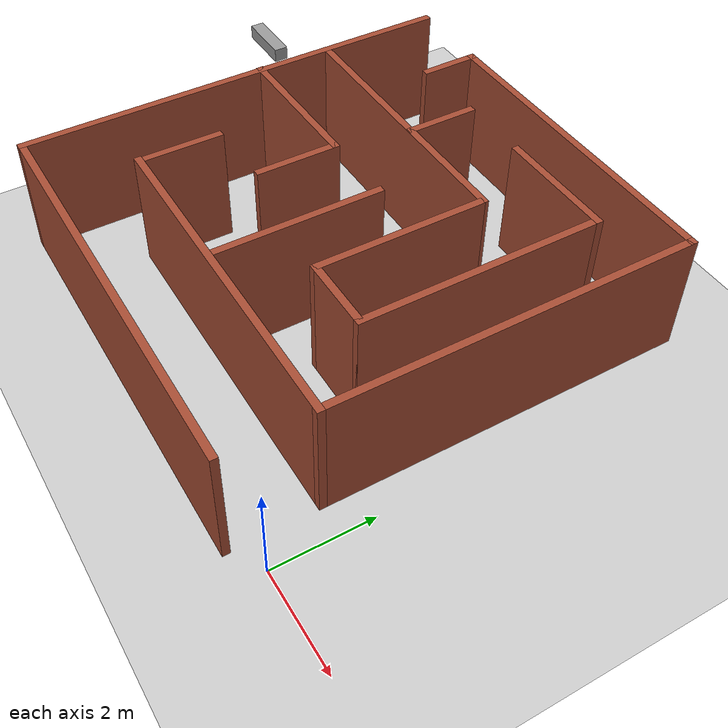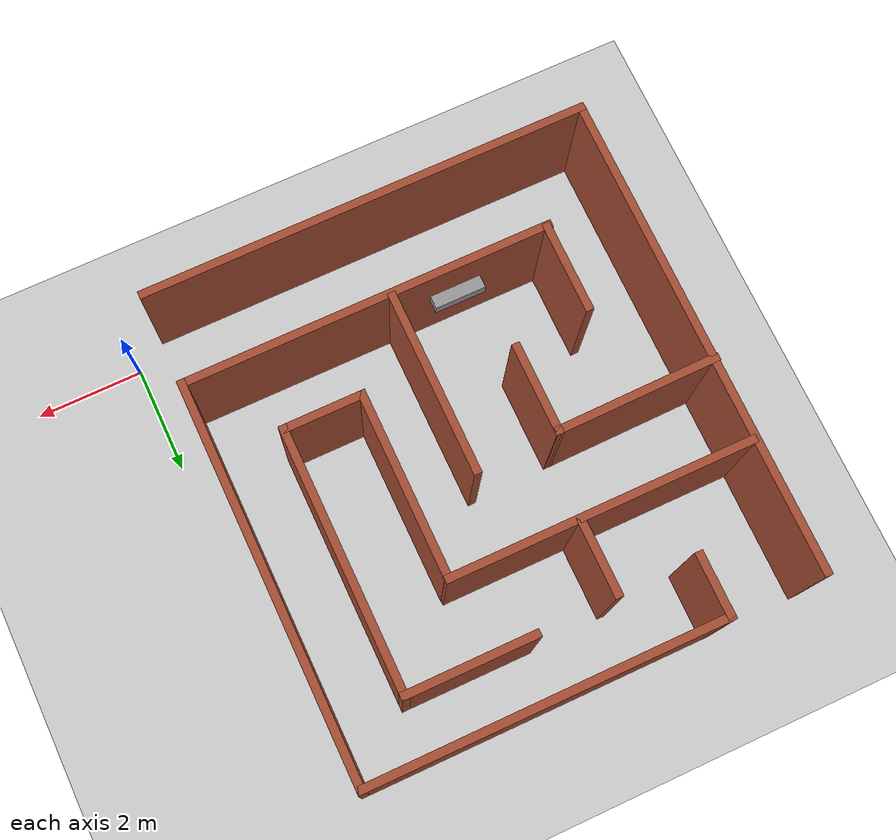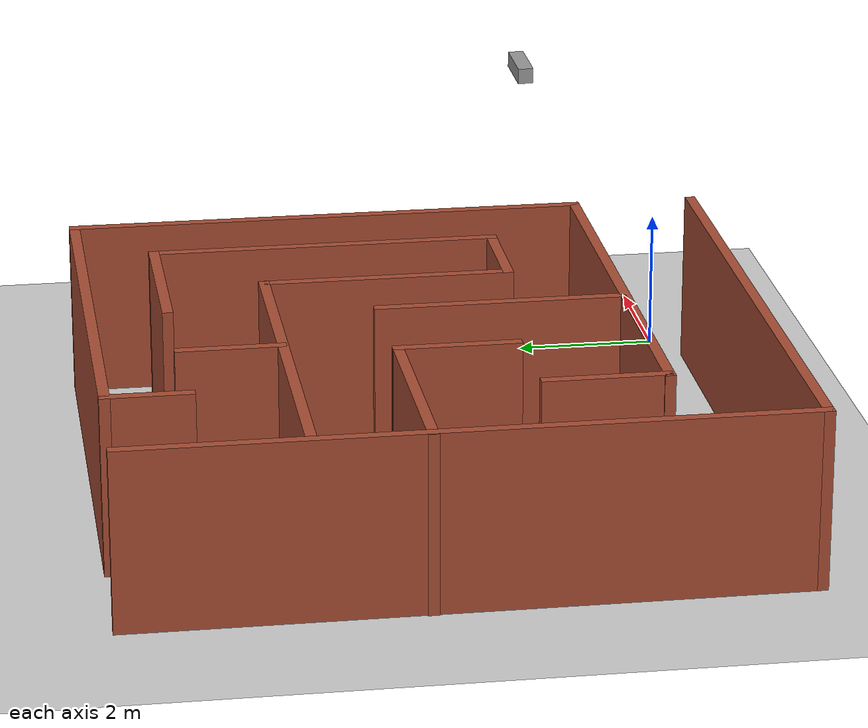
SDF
<sdf version="1.7">
 <world name="default">
  <light name="sun" type="directional">
   <pose>0 0 10 0 -0 0</pose>
   <diffuse>0.8 0.8 0.8 1</diffuse>
   <specular>0.2 0.2 0.2 1</specular>
   <attenuation>
    <range>1000</range>
    <constant>0.9</constant>
    <linear>0.01</linear>
    <quadratic>0.001</quadratic>
   </attenuation>
   <direction>-0.5 0.1 -0.9</direction>
   <spot><inner_angle>0</inner_angle><outer_angle>0</outer_angle><falloff>0</falloff></spot>
  </light>
  <model name="ground_plane">
   <static>1</static>
   <link name="link">
    <collision name="collision">
     <geometry><plane><normal>0 0 1</normal><size>100 100</size></plane></geometry>
     <surface><friction><ode><mu>100</mu><mu2>50</mu2></ode></friction></surface>
    </collision>
    <visual name="visual">
     <cast_shadows>0</cast_shadows>
     <geometry><plane><normal>0 0 1</normal><size>100 100</size></plane></geometry>
     <material>
      <script><uri>file://media/materials/scripts/gazebo.material</uri><name>Gazebo/Grey</name></script>
     </material>
    </visual>
   </link>
  </model>
  <gravity>0 0 -9.8</gravity>
  <magnetic_field>6e-06 2.3e-05 -4.2e-05</magnetic_field>
  <atmosphere type="adiabatic"/>
  <physics type="ode">
   <max_step_size>0.001</max_step_size>
   <real_time_factor>1</real_time_factor>
   <real_time_update_rate>1000</real_time_update_rate>
  </physics>
  <scene><ambient>0.4 0.4 0.4 1</ambient><background>0.7 0.7 0.7 1</background><shadows>1</shadows></scene>
  <spherical_coordinates>
   <surface_model>EARTH_WGS84</surface_model>
   <latitude_deg>0</latitude_deg>
   <longitude_deg>0</longitude_deg>
   <elevation>0</elevation>
   <heading_deg>0</heading_deg>
  </spherical_coordinates>
  <model name="maze">
   <pose>-4.37047 4.12283 0 0 -0 0</pose>
   <link name="Wall_0">
    <collision name="Wall_0_Collision">
     <geometry><box><size>8.5 0.15 2.5</size></box></geometry>
     <pose>0 0 1.25 0 -0 0</pose>
    </collision>
    <visual name="Wall_0_Visual">
     <pose>0 0 1.25 0 -0 0</pose>
     <geometry><box><size>8.5 0.15 2.5</size></box></geometry>
     <material>
      <script><uri>file://media/materials/scripts/gazebo.material</uri><name>Gazebo/Bricks</name></script>
      <ambient>1 1 1 1</ambient>
     </material>
     <meta><layer>0</layer></meta>
    </visual>
    <pose>-0.467422 -4.55 0 0 -0 3.14159</pose>
   </link>
   <link name="Wall_11">
    <collision name="Wall_11_Collision">
     <geometry><box><size>5.75 0.15 2.5</size></box></geometry>
     <pose>0 0 1.25 0 -0 0</pose>
    </collision>
    <visual name="Wall_11_Visual">
     <pose>0 0 1.25 0 -0 0</pose>
     <geometry><box><size>5.75 0.15 2.5</size></box></geometry>
     <material>
      <script><uri>file://media/materials/scripts/gazebo.material</uri><name>Gazebo/Bricks</name></script>
      <ambient>1 1 1 1</ambient>
     </material>
     <meta><layer>0</layer></meta>
    </visual>
    <pose>-1.77757 2.0714 0 0 -0 0</pose>
   </link>
   <link name="Wall_13">
    <collision name="Wall_13_Collision">
     <geometry><box><size>1.75 0.15 2.5</size></box></geometry>
     <pose>0 0 1.25 0 -0 0</pose>
    </collision>
    <visual name="Wall_13_Visual">
     <pose>0 0 1.25 0 -0 0</pose>
     <geometry><box><size>1.75 0.15 2.5</size></box></geometry>
     <material>
      <script><uri>file://media/materials/scripts/gazebo.material</uri><name>Gazebo/Bricks</name></script>
      <ambient>1 1 1 1</ambient>
     </material>
     <meta><layer>0</layer></meta>
    </visual>
    <pose>-1.69963 -0.224792 0 0 -0 1.5708</pose>
   </link>
   <link name="Wall_14">
    <collision name="Wall_14_Collision">
     <geometry><box><size>3.09478 0.15 2.5</size></box></geometry>
     <pose>0 0 1.25 0 -0 0</pose>
    </collision>
    <visual name="Wall_14_Visual">
     <pose>0 0 1.25 0 -0 0</pose>
     <geometry><box><size>3.09478 0.15 2.5</size></box></geometry>
     <material>
      <script><uri>file://media/materials/scripts/gazebo.material</uri><name>Gazebo/Bricks</name></script>
      <ambient>1 1 1 1</ambient>
     </material>
     <meta><layer>0</layer></meta>
    </visual>
    <pose>-3.18941 0.557718 0 0 -0 -3.12971</pose>
   </link>
   <link name="Wall_2">
    <collision name="Wall_2_Collision">
     <geometry><box><size>9.25 0.15 2.5</size></box></geometry>
     <pose>0 0 1.25 0 -0 0</pose>
    </collision>
    <visual name="Wall_2_Visual">
     <pose>0 0 1.25 0 -0 0</pose>
     <geometry><box><size>9.25 0.15 2.5</size></box></geometry>
     <material>
      <script><uri>file://media/materials/scripts/gazebo.material</uri><name>Gazebo/Bricks</name></script>
      <ambient>1 1 1 1</ambient>
     </material>
     <meta><layer>0</layer></meta>
    </visual>
    <pose>-4.64242 -0 0 0 -0 1.5708</pose>
   </link>
   <link name="Wall_22">
    <collision name="Wall_22_Collision">
     <geometry><box><size>3.5 0.15 2.5</size></box></geometry>
     <pose>0 0 1.25 0 -0 0</pose>
    </collision>
    <visual name="Wall_22_Visual">
     <pose>0 0 1.25 0 -0 0</pose>
     <geometry><box><size>3.5 0.15 2.5</size></box></geometry>
     <material>
      <script><uri>file://media/materials/scripts/gazebo.material</uri><name>Gazebo/Bricks</name></script>
      <ambient>1 1 1 1</ambient>
     </material>
     <meta><layer>0</layer></meta>
    </visual>
    <pose>-0.160055 -1.0569 0 0 -0 1.5708</pose>
   </link>
   <link name="Wall_25">
    <collision name="Wall_25_Collision">
     <geometry><box><size>3.5 0.15 2.5</size></box></geometry>
     <pose>0 0 1.25 0 -0 0</pose>
    </collision>
    <visual name="Wall_25_Visual">
     <pose>0 0 1.25 0 -0 0</pose>
     <geometry><box><size>3.5 0.15 2.5</size></box></geometry>
     <material>
      <script><uri>file://media/materials/scripts/gazebo.material</uri><name>Gazebo/Bricks</name></script>
      <ambient>1 1 1 1</ambient>
     </material>
     <meta><layer>0</layer></meta>
    </visual>
    <pose>1.02919 0.315079 0 0 -0 -1.5708</pose>
   </link>
   <link name="Wall_30">
    <collision name="Wall_30_Collision">
     <geometry><box><size>1.58514 0.15 2.5</size></box></geometry>
     <pose>0 0 1.25 0 -0 0</pose>
    </collision>
    <visual name="Wall_30_Visual">
     <pose>0 0 1.25 0 -0 0</pose>
     <geometry><box><size>1.58514 0.15 2.5</size></box></geometry>
     <material>
      <script><uri>file://media/materials/scripts/gazebo.material</uri><name>Gazebo/Bricks</name></script>
      <ambient>1 1 1 1</ambient>
     </material>
     <meta><layer>0</layer></meta>
    </visual>
    <pose>1.74676 -1.35992 0 0 -0 0</pose>
   </link>
   <link name="Wall_31">
    <collision name="Wall_31_Collision">
     <geometry><box><size>5 0.15 2.5</size></box></geometry>
     <pose>0 0 1.25 0 -0 0</pose>
    </collision>
    <visual name="Wall_31_Visual">
     <pose>0 0 1.25 0 -0 0</pose>
     <geometry><box><size>5 0.15 2.5</size></box></geometry>
     <material>
      <script><uri>file://media/materials/scripts/gazebo.material</uri><name>Gazebo/Bricks</name></script>
      <ambient>1 1 1 1</ambient>
     </material>
     <meta><layer>0</layer></meta>
    </visual>
    <pose>2.47433 1.06508 0 0 -0 1.5708</pose>
   </link>
   <link name="Wall_33">
    <collision name="Wall_33_Collision">
     <geometry><box><size>1.25 0.15 2.5</size></box></geometry>
     <pose>0 0 1.25 0 -0 0</pose>
    </collision>
    <visual name="Wall_33_Visual">
     <pose>0 0 1.25 0 -0 0</pose>
     <geometry><box><size>1.25 0.15 2.5</size></box></geometry>
     <material>
      <script><uri>file://media/materials/scripts/gazebo.material</uri><name>Gazebo/Bricks</name></script>
      <ambient>1 1 1 1</ambient>
     </material>
     <meta><layer>0</layer></meta>
    </visual>
    <pose>-2.88217 3.99497 0 0 -0 -1.5708</pose>
   </link>
   <link name="Wall_35">
    <collision name="Wall_35_Collision">
     <geometry><box><size>1.5 0.15 2.5</size></box></geometry>
     <pose>0 0 1.25 0 -0 0</pose>
    </collision>
    <visual name="Wall_35_Visual">
     <pose>0 0 1.25 0 -0 0</pose>
     <geometry><box><size>1.5 0.15 2.5</size></box></geometry>
     <material>
      <script><uri>file://media/materials/scripts/gazebo.material</uri><name>Gazebo/Bricks</name></script>
      <ambient>1 1 1 1</ambient>
     </material>
     <meta><layer>0</layer></meta>
    </visual>
    <pose>-1.37032 2.7709 0 0 -0 1.5708</pose>
   </link>
   <link name="Wall_37">
    <collision name="Wall_37_Collision">
     <geometry><box><size>2.5 0.15 2.5</size></box></geometry>
     <pose>0 0 1.25 0 -0 0</pose>
    </collision>
    <visual name="Wall_37_Visual">
     <pose>0 0 1.25 0 -0 0</pose>
     <geometry><box><size>2.5 0.15 2.5</size></box></geometry>
     <material>
      <script><uri>file://media/materials/scripts/gazebo.material</uri><name>Gazebo/Bricks</name></script>
      <ambient>1 1 1 1</ambient>
     </material>
     <meta><layer>0</layer></meta>
    </visual>
    <pose>1.29933 3.49008 0 0 -0 3.14159</pose>
   </link>
   <link name="Wall_4">
    <collision name="Wall_4_Collision">
     <geometry><box><size>6.75 0.15 2.5</size></box></geometry>
     <pose>0 0 1.25 0 -0 0</pose>
    </collision>
    <visual name="Wall_4_Visual">
     <pose>0 0 1.25 0 -0 0</pose>
     <geometry><box><size>6.75 0.15 2.5</size></box></geometry>
     <material>
      <script><uri>file://media/materials/scripts/gazebo.material</uri><name>Gazebo/Bricks</name></script>
      <ambient>1 1 1 1</ambient>
     </material>
     <meta><layer>0</layer></meta>
    </visual>
    <pose>0.417829 4.54497 0 0 -0 0</pose>
   </link>
   <link name="Wall_6">
    <collision name="Wall_6_Collision">
     <geometry><box><size>7.49465 0.15 2.5</size></box></geometry>
     <pose>0 0 1.25 0 -0 0</pose>
    </collision>
    <visual name="Wall_6_Visual">
     <pose>0 0 1.25 0 -0 0</pose>
     <geometry><box><size>7.49465 0.15 2.5</size></box></geometry>
     <material>
      <script><uri>file://media/materials/scripts/gazebo.material</uri><name>Gazebo/Bricks</name></script>
      <ambient>1 1 1 1</ambient>
     </material>
     <meta><layer>0</layer></meta>
    </visual>
    <pose>3.71783 0.872663 0 0 -0 -1.5708</pose>
   </link>
   <link name="Wall_7">
    <collision name="Wall_7_Collision">
     <geometry><box><size>7.01081 0.15 2.5</size></box></geometry>
     <pose>0 0 1.25 0 -0 0</pose>
    </collision>
    <visual name="Wall_7_Visual">
     <pose>0 0 1.25 0 -0 0</pose>
     <geometry><box><size>7.01081 0.15 2.5</size></box></geometry>
     <material>
      <script><uri>file://media/materials/scripts/gazebo.material</uri><name>Gazebo/Bricks</name></script>
      <ambient>1 1 1 1</ambient>
     </material>
     <meta><layer>0</layer></meta>
    </visual>
    <pose>0.287425 -2.79965 0 0 -0 3.14159</pose>
   </link>
   <link name="Wall_8">
    <collision name="Wall_8_Collision">
     <geometry><box><size>1.75 0.15 2.5</size></box></geometry>
     <pose>0 0 1.25 0 -0 0</pose>
    </collision>
    <visual name="Wall_8_Visual">
     <pose>0 0 1.25 0 -0 0</pose>
     <geometry><box><size>1.75 0.15 2.5</size></box></geometry>
     <material>
      <script><uri>file://media/materials/scripts/gazebo.material</uri><name>Gazebo/Bricks</name></script>
      <ambient>1 1 1 1</ambient>
     </material>
     <meta><layer>0</layer></meta>
    </visual>
    <pose>-3.11638 -1.97304 0 0 -0 1.5708</pose>
   </link>
   <static>1</static>
  </model>
  <model name="cam">
   <link name="link_0">
    <inertial>
     <mass>1</mass>
     <inertia>
      <ixx>0.166667</ixx>
      <ixy>0</ixy>
      <ixz>0</ixz>
      <iyy>0.166667</iyy>
      <iyz>0</iyz>
      <izz>0.166667</izz>
     </inertia>
    </inertial>
    <gravity>0</gravity>
    <self_collide>1</self_collide>
    <kinematic>1</kinematic>
    <visual name="visual">
     <geometry><box><size>0.8 0.2 0.2</size></box></geometry>
     <material>
      <lighting>1</lighting>
      <script><uri>file://media/materials/scripts/gazebo.material</uri><name>Gazebo/Grey</name></script>
      <shader type="pixel"><normal_map>__default__</normal_map></shader>
      <ambient>0.3 0.3 0.3 1</ambient>
      <diffuse>0.7 0.7 0.7 1</diffuse>
      <specular>0.01 0.01 0.01 1</specular>
      <emissive>0 0 0 1</emissive>
     </material>
    </visual>
    <collision name="collision">
     <geometry><box><size>0.8 0.2 0.2</size></box></geometry>
     <surface>
      <friction>
       <ode><mu>1</mu><mu2>1</mu2><fdir1>0 0 0</fdir1><slip1>0</slip1><slip2>0</slip2></ode>
       <torsional>
        <coefficient>1</coefficient>
        <patch_radius>0</patch_radius>
        <surface_radius>0</surface_radius>
        <use_patch_radius>1</use_patch_radius>
        <ode><slip>0</slip></ode>
       </torsional>
      </friction>
      <bounce><restitution_coefficient>0</restitution_coefficient><threshold>1e+06</threshold></bounce>
      <contact>
       <collide_without_contact>0</collide_without_contact>
       <collide_without_contact_bitmask>1</collide_without_contact_bitmask>
       <collide_bitmask>1</collide_bitmask>
       <ode>
        <soft_cfm>0</soft_cfm>
        <soft_erp>0.2</soft_erp>
        <kp>1e+13</kp>
        <kd>1</kd>
        <max_vel>0.01</max_vel>
        <min_depth>0</min_depth>
       </ode>
       <bullet>
        <split_impulse>1</split_impulse>
        <split_impulse_penetration_threshold>-0.01</split_impulse_penetration_threshold>
        <soft_cfm>0</soft_cfm>
        <soft_erp>0.2</soft_erp>
        <kp>1e+13</kp>
        <kd>1</kd>
       </bullet>
      </contact>
     </surface>
    </collision>
    <sensor type="camera" name="camera1">
     <pose>0 0 0 0 1.57 0</pose>
     <update_rate>30.0</update_rate>
     <visualize>true</visualize>
     <camera name="head">
      <horizontal_fov>1.3962634</horizontal_fov>
      <image><width>800</width><height>800</height><format>R8G8B8</format></image>
      <clip><near>0.02</near><far>300</far></clip>
      <noise><type>gaussian</type><mean>0.0</mean><stddev>0.007</stddev></noise>
     </camera>
     <plugin name="camera_controller" filename="libgazebo_ros_camera.so">
      <alwaysOn>true</alwaysOn>
      <updateRate>0.0</updateRate>
      <cameraName>rrbot/camera1</cameraName>
      <imageTopicName>image_raw</imageTopicName>
      <cameraInfoTopicName>camera_info</cameraInfoTopicName>
      <frameName>camera_link</frameName>
      <hackBaseline>0.07</hackBaseline>
      <distortionK1>0.0</distortionK1>
      <distortionK2>0.0</distortionK2>
      <distortionK3>0.0</distortionK3>
      <distortionT1>0.0</distortionT1>
      <distortionT2>0.0</distortionT2>
     </plugin>
    </sensor>
   </link>
   <static>0</static>
   <pose>-4.92227 2.88376 5.94468 0 -0 0</pose>
  </model>
 </world>
</sdf>
